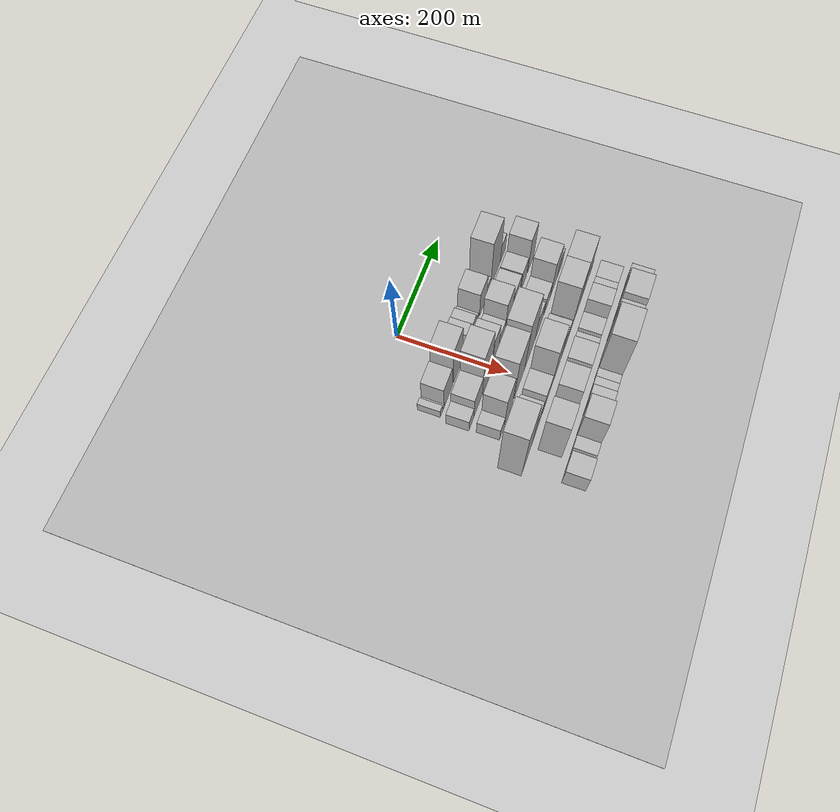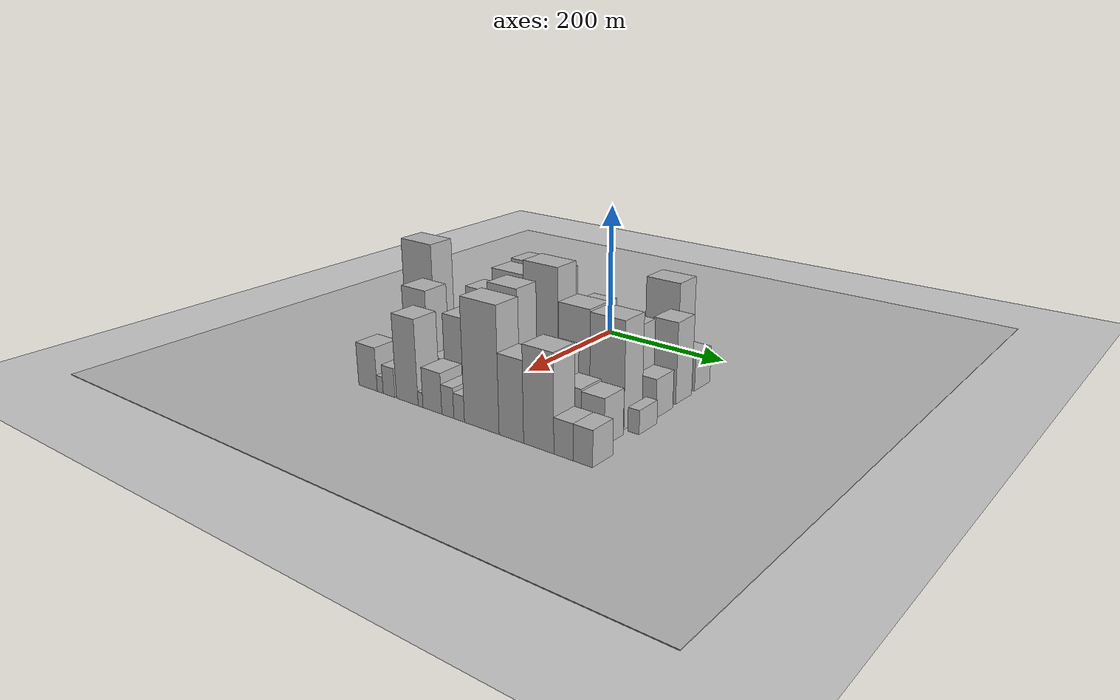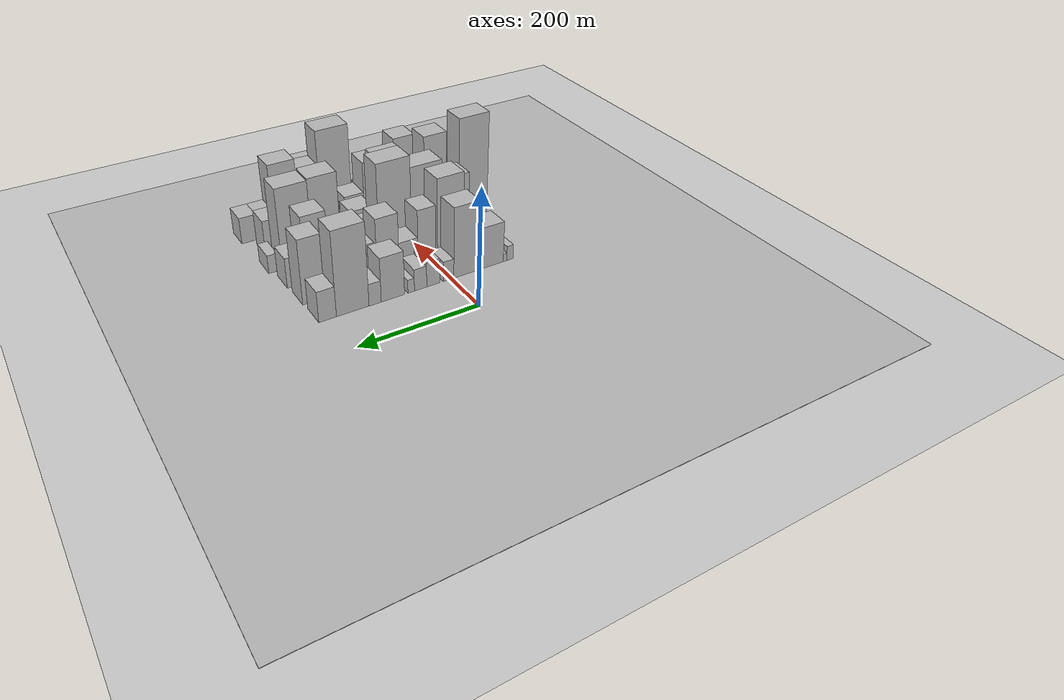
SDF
<sdf version="1.6">
 <world name="default">
  <include><name>ground_plane_1</name><uri>model://HANNAS_ground_plane</uri></include>
  <include>
   <name>ground_plane_2</name>
   <uri>model://HANNAS_ground_plane</uri>
   <pose>100 0 0  0 0 0</pose>
  </include>
  <model name="building_21">
   <static>1</static>
   <pose>100.0000 -107.6171 0 0.000000 0.000000 0.000000</pose>
   <link name="link">
    <pose>0 0 13.50 0 0 0</pose>
    <collision name="collision"><geometry><box><size>40.0000 11.9597 27.0000</size></box></geometry></collision>
    <visual name="visual">
     <cast_shadows>0</cast_shadows>
     <geometry><box><size>40.0000 11.9597 27.0000</size></box></geometry>
     <material>
      <script>
       <uri>model://HANNAS_wall/materials/scripts</uri>
       <uri>model://HANNAS_wall/materials/textures</uri>
       <name>vrc/HANNAS_wall</name>
      </script>
     </material>
    </visual>
   </link>
  </model>
  <model name="building_22">
   <static>1</static>
   <pose>100.0000 -98.2412 0 0.000000 0.000000 0.000000</pose>
   <link name="link">
    <pose>0 0 7.50 0 0 0</pose>
    <collision name="collision"><geometry><box><size>40.0000 6.7922 15.0000</size></box></geometry></collision>
    <visual name="visual">
     <cast_shadows>0</cast_shadows>
     <geometry><box><size>40.0000 6.7922 15.0000</size></box></geometry>
     <material>
      <script>
       <uri>model://HANNAS_wall/materials/scripts</uri>
       <uri>model://HANNAS_wall/materials/textures</uri>
       <name>vrc/HANNAS_wall</name>
      </script>
     </material>
    </visual>
   </link>
  </model>
  <model name="building_23">
   <static>1</static>
   <pose>100.0000 -74.6883 0 0.000000 0.000000 0.000000</pose>
   <link name="link">
    <pose>0 0 37.50 0 0 0</pose>
    <collision name="collision"><geometry><box><size>40.0000 40.3135 75.0000</size></box></geometry></collision>
    <visual name="visual">
     <cast_shadows>0</cast_shadows>
     <geometry><box><size>40.0000 40.3135 75.0000</size></box></geometry>
     <material>
      <script>
       <uri>model://HANNAS_wall/materials/scripts</uri>
       <uri>model://HANNAS_wall/materials/textures</uri>
       <name>vrc/HANNAS_wall</name>
      </script>
     </material>
    </visual>
   </link>
  </model>
  <model name="building_24">
   <static>1</static>
   <pose>100.0000 -26.6309 0 0.000000 0.000000 0.000000</pose>
   <link name="link">
    <pose>0 0 63.00 0 0 0</pose>
    <collision name="collision"><geometry><box><size>40.0000 45.8013 126.0000</size></box></geometry></collision>
    <visual name="visual">
     <cast_shadows>0</cast_shadows>
     <geometry><box><size>40.0000 45.8013 126.0000</size></box></geometry>
     <material>
      <script>
       <uri>model://HANNAS_wall/materials/scripts</uri>
       <uri>model://HANNAS_wall/materials/textures</uri>
       <name>vrc/HANNAS_wall</name>
      </script>
     </material>
    </visual>
   </link>
  </model>
  <model name="building_25">
   <static>1</static>
   <pose>100.0000 5.6907 0 0.000000 0.000000 0.000000</pose>
   <link name="link">
    <pose>0 0 18.00 0 0 0</pose>
    <collision name="collision"><geometry><box><size>40.0000 18.8419 36.0000</size></box></geometry></collision>
    <visual name="visual">
     <cast_shadows>0</cast_shadows>
     <geometry><box><size>40.0000 18.8419 36.0000</size></box></geometry>
     <material>
      <script>
       <uri>model://HANNAS_wall/materials/scripts</uri>
       <uri>model://HANNAS_wall/materials/textures</uri>
       <name>vrc/HANNAS_wall</name>
      </script>
     </material>
    </visual>
   </link>
  </model>
  <model name="building_26">
   <static>1</static>
   <pose>100.0000 32.7664 0 0.000000 0.000000 0.000000</pose>
   <link name="link">
    <pose>0 0 22.50 0 0 0</pose>
    <collision name="collision"><geometry><box><size>40.0000 23.3094 45.0000</size></box></geometry></collision>
    <visual name="visual">
     <cast_shadows>0</cast_shadows>
     <geometry><box><size>40.0000 23.3094 45.0000</size></box></geometry>
     <material>
      <script>
       <uri>model://HANNAS_wall/materials/scripts</uri>
       <uri>model://HANNAS_wall/materials/textures</uri>
       <name>vrc/HANNAS_wall</name>
      </script>
     </material>
    </visual>
   </link>
  </model>
  <model name="building_27">
   <static>1</static>
   <pose>100.0000 55.0933 0 0.000000 0.000000 0.000000</pose>
   <link name="link">
    <pose>0 0 19.50 0 0 0</pose>
    <collision name="collision"><geometry><box><size>40.0000 21.3444 39.0000</size></box></geometry></collision>
    <visual name="visual">
     <cast_shadows>0</cast_shadows>
     <geometry><box><size>40.0000 21.3444 39.0000</size></box></geometry>
     <material>
      <script>
       <uri>model://HANNAS_wall/materials/scripts</uri>
       <uri>model://HANNAS_wall/materials/textures</uri>
       <name>vrc/HANNAS_wall</name>
      </script>
     </material>
    </visual>
   </link>
  </model>
  <model name="building_28">
   <static>1</static>
   <pose>100.0000 71.3840 0 0.000000 0.000000 0.000000</pose>
   <link name="link">
    <pose>0 0 12.00 0 0 0</pose>
    <collision name="collision"><geometry><box><size>40.0000 11.2370 24.0000</size></box></geometry></collision>
    <visual name="visual">
     <cast_shadows>0</cast_shadows>
     <geometry><box><size>40.0000 11.2370 24.0000</size></box></geometry>
     <material>
      <script>
       <uri>model://HANNAS_wall/materials/scripts</uri>
       <uri>model://HANNAS_wall/materials/textures</uri>
       <name>vrc/HANNAS_wall</name>
      </script>
     </material>
    </visual>
   </link>
  </model>
  <model name="building_29">
   <static>1</static>
   <pose>100.0000 102.6483 0 0.000000 0.000000 0.000000</pose>
   <link name="link">
    <pose>0 0 39.00 0 0 0</pose>
    <collision name="collision"><geometry><box><size>40.0000 39.2917 78.0000</size></box></geometry></collision>
    <visual name="visual">
     <cast_shadows>0</cast_shadows>
     <geometry><box><size>40.0000 39.2917 78.0000</size></box></geometry>
     <material>
      <script>
       <uri>model://HANNAS_wall/materials/scripts</uri>
       <uri>model://HANNAS_wall/materials/textures</uri>
       <name>vrc/HANNAS_wall</name>
      </script>
     </material>
    </visual>
   </link>
  </model>
  <model name="building_30">
   <static>1</static>
   <pose>100.0000 132.4842 0 0.000000 0.000000 0.000000</pose>
   <link name="link">
    <pose>0 0 19.50 0 0 0</pose>
    <collision name="collision"><geometry><box><size>40.0000 20.3801 39.0000</size></box></geometry></collision>
    <visual name="visual">
     <cast_shadows>0</cast_shadows>
     <geometry><box><size>40.0000 20.3801 39.0000</size></box></geometry>
     <material>
      <script>
       <uri>model://HANNAS_wall/materials/scripts</uri>
       <uri>model://HANNAS_wall/materials/textures</uri>
       <name>vrc/HANNAS_wall</name>
      </script>
     </material>
    </visual>
   </link>
  </model>
  <model name="building_31">
   <static>1</static>
   <pose>100.0000 169.2116 0 0.000000 0.000000 0.000000</pose>
   <link name="link">
    <pose>0 0 73.50 0 0 0</pose>
    <collision name="collision"><geometry><box><size>40.0000 53.0747 147.0000</size></box></geometry></collision>
    <visual name="visual">
     <cast_shadows>0</cast_shadows>
     <geometry><box><size>40.0000 53.0747 147.0000</size></box></geometry>
     <material>
      <script>
       <uri>model://HANNAS_wall/materials/scripts</uri>
       <uri>model://HANNAS_wall/materials/textures</uri>
       <name>vrc/HANNAS_wall</name>
      </script>
     </material>
    </visual>
   </link>
  </model>
  <model name="building_32">
   <static>1</static>
   <pose>100.0000 209.7995 0 0.000000 0.000000 0.000000</pose>
   <link name="link">
    <pose>0 0 27.00 0 0 0</pose>
    <collision name="collision"><geometry><box><size>40.0000 28.1011 54.0000</size></box></geometry></collision>
    <visual name="visual">
     <cast_shadows>0</cast_shadows>
     <geometry><box><size>40.0000 28.1011 54.0000</size></box></geometry>
     <material>
      <script>
       <uri>model://HANNAS_wall/materials/scripts</uri>
       <uri>model://HANNAS_wall/materials/textures</uri>
       <name>vrc/HANNAS_wall</name>
      </script>
     </material>
    </visual>
   </link>
  </model>
  <model name="building_72">
   <static>1</static>
   <pose>152.0000 -107.4834 0 0.000000 0.000000 0.000000</pose>
   <link name="link">
    <pose>0 0 21.00 0 0 0</pose>
    <collision name="collision"><geometry><box><size>40.0000 24.8672 42.0000</size></box></geometry></collision>
    <visual name="visual">
     <cast_shadows>0</cast_shadows>
     <geometry><box><size>40.0000 24.8672 42.0000</size></box></geometry>
     <material>
      <script>
       <uri>model://HANNAS_wall/materials/scripts</uri>
       <uri>model://HANNAS_wall/materials/textures</uri>
       <name>vrc/HANNAS_wall</name>
      </script>
     </material>
    </visual>
   </link>
  </model>
  <model name="building_73">
   <static>1</static>
   <pose>152.0000 -73.6329 0 0.000000 0.000000 0.000000</pose>
   <link name="link">
    <pose>0 0 37.50 0 0 0</pose>
    <collision name="collision"><geometry><box><size>40.0000 42.8338 75.0000</size></box></geometry></collision>
    <visual name="visual">
     <cast_shadows>0</cast_shadows>
     <geometry><box><size>40.0000 42.8338 75.0000</size></box></geometry>
     <material>
      <script>
       <uri>model://HANNAS_wall/materials/scripts</uri>
       <uri>model://HANNAS_wall/materials/textures</uri>
       <name>vrc/HANNAS_wall</name>
      </script>
     </material>
    </visual>
   </link>
  </model>
  <model name="building_74">
   <static>1</static>
   <pose>152.0000 -28.2599 0 0.000000 0.000000 0.000000</pose>
   <link name="link">
    <pose>0 0 75.00 0 0 0</pose>
    <collision name="collision"><geometry><box><size>40.0000 47.9121 150.0000</size></box></geometry></collision>
    <visual name="visual">
     <cast_shadows>0</cast_shadows>
     <geometry><box><size>40.0000 47.9121 150.0000</size></box></geometry>
     <material>
      <script>
       <uri>model://HANNAS_wall/materials/scripts</uri>
       <uri>model://HANNAS_wall/materials/textures</uri>
       <name>vrc/HANNAS_wall</name>
      </script>
     </material>
    </visual>
   </link>
  </model>
  <model name="building_75">
   <static>1</static>
   <pose>152.0000 14.6540 0 0.000000 0.000000 0.000000</pose>
   <link name="link">
    <pose>0 0 52.50 0 0 0</pose>
    <collision name="collision"><geometry><box><size>40.0000 31.9158 105.0000</size></box></geometry></collision>
    <visual name="visual">
     <cast_shadows>0</cast_shadows>
     <geometry><box><size>40.0000 31.9158 105.0000</size></box></geometry>
     <material>
      <script>
       <uri>model://HANNAS_wall/materials/scripts</uri>
       <uri>model://HANNAS_wall/materials/textures</uri>
       <name>vrc/HANNAS_wall</name>
      </script>
     </material>
    </visual>
   </link>
  </model>
  <model name="building_76">
   <static>1</static>
   <pose>152.0000 47.3638 0 0.000000 0.000000 0.000000</pose>
   <link name="link">
    <pose>0 0 28.50 0 0 0</pose>
    <collision name="collision"><geometry><box><size>40.0000 33.5037 57.0000</size></box></geometry></collision>
    <visual name="visual">
     <cast_shadows>0</cast_shadows>
     <geometry><box><size>40.0000 33.5037 57.0000</size></box></geometry>
     <material>
      <script>
       <uri>model://HANNAS_wall/materials/scripts</uri>
       <uri>model://HANNAS_wall/materials/textures</uri>
       <name>vrc/HANNAS_wall</name>
      </script>
     </material>
    </visual>
   </link>
  </model>
  <model name="building_77">
   <static>1</static>
   <pose>152.0000 83.1974 0 0.000000 0.000000 0.000000</pose>
   <link name="link">
    <pose>0 0 55.50 0 0 0</pose>
    <collision name="collision"><geometry><box><size>40.0000 38.1635 111.0000</size></box></geometry></collision>
    <visual name="visual">
     <cast_shadows>0</cast_shadows>
     <geometry><box><size>40.0000 38.1635 111.0000</size></box></geometry>
     <material>
      <script>
       <uri>model://HANNAS_wall/materials/scripts</uri>
       <uri>model://HANNAS_wall/materials/textures</uri>
       <name>vrc/HANNAS_wall</name>
      </script>
     </material>
    </visual>
   </link>
  </model>
  <model name="building_78">
   <static>1</static>
   <pose>152.0000 125.6947 0 0.000000 0.000000 0.000000</pose>
   <link name="link">
    <pose>0 0 36.00 0 0 0</pose>
    <collision name="collision"><geometry><box><size>40.0000 40.8310 72.0000</size></box></geometry></collision>
    <visual name="visual">
     <cast_shadows>0</cast_shadows>
     <geometry><box><size>40.0000 40.8310 72.0000</size></box></geometry>
     <material>
      <script>
       <uri>model://HANNAS_wall/materials/scripts</uri>
       <uri>model://HANNAS_wall/materials/textures</uri>
       <name>vrc/HANNAS_wall</name>
      </script>
     </material>
    </visual>
   </link>
  </model>
  <model name="building_79">
   <static>1</static>
   <pose>152.0000 167.7199 0 0.000000 0.000000 0.000000</pose>
   <link name="link">
    <pose>0 0 33.00 0 0 0</pose>
    <collision name="collision"><geometry><box><size>40.0000 33.2195 66.0000</size></box></geometry></collision>
    <visual name="visual">
     <cast_shadows>0</cast_shadows>
     <geometry><box><size>40.0000 33.2195 66.0000</size></box></geometry>
     <material>
      <script>
       <uri>model://HANNAS_wall/materials/scripts</uri>
       <uri>model://HANNAS_wall/materials/textures</uri>
       <name>vrc/HANNAS_wall</name>
      </script>
     </material>
    </visual>
   </link>
  </model>
  <model name="building_80">
   <static>1</static>
   <pose>152.0000 208.0052 0 0.000000 0.000000 0.000000</pose>
   <link name="link">
    <pose>0 0 57.00 0 0 0</pose>
    <collision name="collision"><geometry><box><size>40.0000 37.3511 114.0000</size></box></geometry></collision>
    <visual name="visual">
     <cast_shadows>0</cast_shadows>
     <geometry><box><size>40.0000 37.3511 114.0000</size></box></geometry>
     <material>
      <script>
       <uri>model://HANNAS_wall/materials/scripts</uri>
       <uri>model://HANNAS_wall/materials/textures</uri>
       <name>vrc/HANNAS_wall</name>
      </script>
     </material>
    </visual>
   </link>
  </model>
  <model name="building_125">
   <static>1</static>
   <pose>204.0000 -105.6509 0 0.000000 0.000000 0.000000</pose>
   <link name="link">
    <pose>0 0 22.50 0 0 0</pose>
    <collision name="collision"><geometry><box><size>40.0000 23.9299 45.0000</size></box></geometry></collision>
    <visual name="visual">
     <cast_shadows>0</cast_shadows>
     <geometry><box><size>40.0000 23.9299 45.0000</size></box></geometry>
     <material>
      <script>
       <uri>model://HANNAS_wall/materials/scripts</uri>
       <uri>model://HANNAS_wall/materials/textures</uri>
       <name>vrc/HANNAS_wall</name>
      </script>
     </material>
    </visual>
   </link>
  </model>
  <model name="building_126">
   <static>1</static>
   <pose>204.0000 -72.5963 0 0.000000 0.000000 0.000000</pose>
   <link name="link">
    <pose>0 0 57.00 0 0 0</pose>
    <collision name="collision"><geometry><box><size>40.0000 42.1792 114.0000</size></box></geometry></collision>
    <visual name="visual">
     <cast_shadows>0</cast_shadows>
     <geometry><box><size>40.0000 42.1792 114.0000</size></box></geometry>
     <material>
      <script>
       <uri>model://HANNAS_wall/materials/scripts</uri>
       <uri>model://HANNAS_wall/materials/textures</uri>
       <name>vrc/HANNAS_wall</name>
      </script>
     </material>
    </visual>
   </link>
  </model>
  <model name="building_127">
   <static>1</static>
   <pose>204.0000 -14.3575 0 0.000000 0.000000 0.000000</pose>
   <link name="link">
    <pose>0 0 75.00 0 0 0</pose>
    <collision name="collision"><geometry><box><size>40.0000 56.2984 150.0000</size></box></geometry></collision>
    <visual name="visual">
     <cast_shadows>0</cast_shadows>
     <geometry><box><size>40.0000 56.2984 150.0000</size></box></geometry>
     <material>
      <script>
       <uri>model://HANNAS_wall/materials/scripts</uri>
       <uri>model://HANNAS_wall/materials/textures</uri>
       <name>vrc/HANNAS_wall</name>
      </script>
     </material>
    </visual>
   </link>
  </model>
  <model name="building_128">
   <static>1</static>
   <pose>204.0000 42.9055 0 0.000000 0.000000 0.000000</pose>
   <link name="link">
    <pose>0 0 85.50 0 0 0</pose>
    <collision name="collision"><geometry><box><size>40.0000 58.2277 171.0000</size></box></geometry></collision>
    <visual name="visual">
     <cast_shadows>0</cast_shadows>
     <geometry><box><size>40.0000 58.2277 171.0000</size></box></geometry>
     <material>
      <script>
       <uri>model://HANNAS_wall/materials/scripts</uri>
       <uri>model://HANNAS_wall/materials/textures</uri>
       <name>vrc/HANNAS_wall</name>
      </script>
     </material>
    </visual>
   </link>
  </model>
  <model name="building_129">
   <static>1</static>
   <pose>204.0000 92.3567 0 0.000000 0.000000 0.000000</pose>
   <link name="link">
    <pose>0 0 34.50 0 0 0</pose>
    <collision name="collision"><geometry><box><size>40.0000 40.6747 69.0000</size></box></geometry></collision>
    <visual name="visual">
     <cast_shadows>0</cast_shadows>
     <geometry><box><size>40.0000 40.6747 69.0000</size></box></geometry>
     <material>
      <script>
       <uri>model://HANNAS_wall/materials/scripts</uri>
       <uri>model://HANNAS_wall/materials/textures</uri>
       <name>vrc/HANNAS_wall</name>
      </script>
     </material>
    </visual>
   </link>
  </model>
  <model name="building_130">
   <static>1</static>
   <pose>204.0000 138.6356 0 0.000000 0.000000 0.000000</pose>
   <link name="link">
    <pose>0 0 30.00 0 0 0</pose>
    <collision name="collision"><geometry><box><size>40.0000 33.8832 60.0000</size></box></geometry></collision>
    <visual name="visual">
     <cast_shadows>0</cast_shadows>
     <geometry><box><size>40.0000 33.8832 60.0000</size></box></geometry>
     <material>
      <script>
       <uri>model://HANNAS_wall/materials/scripts</uri>
       <uri>model://HANNAS_wall/materials/textures</uri>
       <name>vrc/HANNAS_wall</name>
      </script>
     </material>
    </visual>
   </link>
  </model>
  <model name="building_131">
   <static>1</static>
   <pose>204.0000 178.9792 0 0.000000 0.000000 0.000000</pose>
   <link name="link">
    <pose>0 0 58.50 0 0 0</pose>
    <collision name="collision"><geometry><box><size>40.0000 40.8040 117.0000</size></box></geometry></collision>
    <visual name="visual">
     <cast_shadows>0</cast_shadows>
     <geometry><box><size>40.0000 40.8040 117.0000</size></box></geometry>
     <material>
      <script>
       <uri>model://HANNAS_wall/materials/scripts</uri>
       <uri>model://HANNAS_wall/materials/textures</uri>
       <name>vrc/HANNAS_wall</name>
      </script>
     </material>
    </visual>
   </link>
  </model>
  <model name="building_132">
   <static>1</static>
   <pose>204.0000 214.5938 0 0.000000 0.000000 0.000000</pose>
   <link name="link">
    <pose>0 0 27.00 0 0 0</pose>
    <collision name="collision"><geometry><box><size>40.0000 30.4252 54.0000</size></box></geometry></collision>
    <visual name="visual">
     <cast_shadows>0</cast_shadows>
     <geometry><box><size>40.0000 30.4252 54.0000</size></box></geometry>
     <material>
      <script>
       <uri>model://HANNAS_wall/materials/scripts</uri>
       <uri>model://HANNAS_wall/materials/textures</uri>
       <name>vrc/HANNAS_wall</name>
      </script>
     </material>
    </visual>
   </link>
  </model>
  <model name="building_175">
   <static>1</static>
   <pose>256.0000 -134.2657 0 0.000000 0.000000 0.000000</pose>
   <link name="link">
    <pose>0 0 91.50 0 0 0</pose>
    <collision name="collision"><geometry><box><size>40.0000 56.9109 183.0000</size></box></geometry></collision>
    <visual name="visual">
     <cast_shadows>0</cast_shadows>
     <geometry><box><size>40.0000 56.9109 183.0000</size></box></geometry>
     <material>
      <script>
       <uri>model://HANNAS_wall/materials/scripts</uri>
       <uri>model://HANNAS_wall/materials/textures</uri>
       <name>vrc/HANNAS_wall</name>
      </script>
     </material>
    </visual>
   </link>
  </model>
  <model name="building_176">
   <static>1</static>
   <pose>256.0000 -83.0237 0 0.000000 0.000000 0.000000</pose>
   <link name="link">
    <pose>0 0 40.50 0 0 0</pose>
    <collision name="collision"><geometry><box><size>40.0000 45.5732 81.0000</size></box></geometry></collision>
    <visual name="visual">
     <cast_shadows>0</cast_shadows>
     <geometry><box><size>40.0000 45.5732 81.0000</size></box></geometry>
     <material>
      <script>
       <uri>model://HANNAS_wall/materials/scripts</uri>
       <uri>model://HANNAS_wall/materials/textures</uri>
       <name>vrc/HANNAS_wall</name>
      </script>
     </material>
    </visual>
   </link>
  </model>
  <model name="building_177">
   <static>1</static>
   <pose>256.0000 -53.6020 0 0.000000 0.000000 0.000000</pose>
   <link name="link">
    <pose>0 0 13.50 0 0 0</pose>
    <collision name="collision"><geometry><box><size>40.0000 13.2701 27.0000</size></box></geometry></collision>
    <visual name="visual">
     <cast_shadows>0</cast_shadows>
     <geometry><box><size>40.0000 13.2701 27.0000</size></box></geometry>
     <material>
      <script>
       <uri>model://HANNAS_wall/materials/scripts</uri>
       <uri>model://HANNAS_wall/materials/textures</uri>
       <name>vrc/HANNAS_wall</name>
      </script>
     </material>
    </visual>
   </link>
  </model>
  <model name="building_178">
   <static>1</static>
   <pose>256.0000 -28.3458 0 0.000000 0.000000 0.000000</pose>
   <link name="link">
    <pose>0 0 36.00 0 0 0</pose>
    <collision name="collision"><geometry><box><size>40.0000 37.2424 72.0000</size></box></geometry></collision>
    <visual name="visual">
     <cast_shadows>0</cast_shadows>
     <geometry><box><size>40.0000 37.2424 72.0000</size></box></geometry>
     <material>
      <script>
       <uri>model://HANNAS_wall/materials/scripts</uri>
       <uri>model://HANNAS_wall/materials/textures</uri>
       <name>vrc/HANNAS_wall</name>
      </script>
     </material>
    </visual>
   </link>
  </model>
  <model name="building_179">
   <static>1</static>
   <pose>256.0000 20.2954 0 0.000000 0.000000 0.000000</pose>
   <link name="link">
    <pose>0 0 75.00 0 0 0</pose>
    <collision name="collision"><geometry><box><size>40.0000 50.0400 150.0000</size></box></geometry></collision>
    <visual name="visual">
     <cast_shadows>0</cast_shadows>
     <geometry><box><size>40.0000 50.0400 150.0000</size></box></geometry>
     <material>
      <script>
       <uri>model://HANNAS_wall/materials/scripts</uri>
       <uri>model://HANNAS_wall/materials/textures</uri>
       <name>vrc/HANNAS_wall</name>
      </script>
     </material>
    </visual>
   </link>
  </model>
  <model name="building_180">
   <static>1</static>
   <pose>256.0000 75.3618 0 0.000000 0.000000 0.000000</pose>
   <link name="link">
    <pose>0 0 34.50 0 0 0</pose>
    <collision name="collision"><geometry><box><size>40.0000 40.0928 69.0000</size></box></geometry></collision>
    <visual name="visual">
     <cast_shadows>0</cast_shadows>
     <geometry><box><size>40.0000 40.0928 69.0000</size></box></geometry>
     <material>
      <script>
       <uri>model://HANNAS_wall/materials/scripts</uri>
       <uri>model://HANNAS_wall/materials/textures</uri>
       <name>vrc/HANNAS_wall</name>
      </script>
     </material>
    </visual>
   </link>
  </model>
  <model name="building_181">
   <static>1</static>
   <pose>256.0000 104.8814 0 0.000000 0.000000 0.000000</pose>
   <link name="link">
    <pose>0 0 16.50 0 0 0</pose>
    <collision name="collision"><geometry><box><size>40.0000 18.9463 33.0000</size></box></geometry></collision>
    <visual name="visual">
     <cast_shadows>0</cast_shadows>
     <geometry><box><size>40.0000 18.9463 33.0000</size></box></geometry>
     <material>
      <script>
       <uri>model://HANNAS_wall/materials/scripts</uri>
       <uri>model://HANNAS_wall/materials/textures</uri>
       <name>vrc/HANNAS_wall</name>
      </script>
     </material>
    </visual>
   </link>
  </model>
  <model name="building_182">
   <static>1</static>
   <pose>256.0000 138.9964 0 0.000000 0.000000 0.000000</pose>
   <link name="link">
    <pose>0 0 73.50 0 0 0</pose>
    <collision name="collision"><geometry><box><size>40.0000 49.2837 147.0000</size></box></geometry></collision>
    <visual name="visual">
     <cast_shadows>0</cast_shadows>
     <geometry><box><size>40.0000 49.2837 147.0000</size></box></geometry>
     <material>
      <script>
       <uri>model://HANNAS_wall/materials/scripts</uri>
       <uri>model://HANNAS_wall/materials/textures</uri>
       <name>vrc/HANNAS_wall</name>
      </script>
     </material>
    </visual>
   </link>
  </model>
  <model name="building_183">
   <static>1</static>
   <pose>256.0000 190.0855 0 0.000000 0.000000 0.000000</pose>
   <link name="link">
    <pose>0 0 72.00 0 0 0</pose>
    <collision name="collision"><geometry><box><size>40.0000 52.8946 144.0000</size></box></geometry></collision>
    <visual name="visual">
     <cast_shadows>0</cast_shadows>
     <geometry><box><size>40.0000 52.8946 144.0000</size></box></geometry>
     <material>
      <script>
       <uri>model://HANNAS_wall/materials/scripts</uri>
       <uri>model://HANNAS_wall/materials/textures</uri>
       <name>vrc/HANNAS_wall</name>
      </script>
     </material>
    </visual>
   </link>
  </model>
  <model name="building_184">
   <static>1</static>
   <pose>256.0000 230.9423 0 0.000000 0.000000 0.000000</pose>
   <link name="link">
    <pose>0 0 16.50 0 0 0</pose>
    <collision name="collision"><geometry><box><size>40.0000 16.8190 33.0000</size></box></geometry></collision>
    <visual name="visual">
     <cast_shadows>0</cast_shadows>
     <geometry><box><size>40.0000 16.8190 33.0000</size></box></geometry>
     <material>
      <script>
       <uri>model://HANNAS_wall/materials/scripts</uri>
       <uri>model://HANNAS_wall/materials/textures</uri>
       <name>vrc/HANNAS_wall</name>
      </script>
     </material>
    </visual>
   </link>
  </model>
  <model name="building_226">
   <static>1</static>
   <pose>308.0000 -89.8308 0 0.000000 0.000000 0.000000</pose>
   <link name="link">
    <pose>0 0 69.00 0 0 0</pose>
    <collision name="collision"><geometry><box><size>40.0000 43.4710 138.0000</size></box></geometry></collision>
    <visual name="visual">
     <cast_shadows>0</cast_shadows>
     <geometry><box><size>40.0000 43.4710 138.0000</size></box></geometry>
     <material>
      <script>
       <uri>model://HANNAS_wall/materials/scripts</uri>
       <uri>model://HANNAS_wall/materials/textures</uri>
       <name>vrc/HANNAS_wall</name>
      </script>
     </material>
    </visual>
   </link>
  </model>
  <model name="building_227">
   <static>1</static>
   <pose>308.0000 -51.4904 0 0.000000 0.000000 0.000000</pose>
   <link name="link">
    <pose>0 0 24.00 0 0 0</pose>
    <collision name="collision"><geometry><box><size>40.0000 27.2099 48.0000</size></box></geometry></collision>
    <visual name="visual">
     <cast_shadows>0</cast_shadows>
     <geometry><box><size>40.0000 27.2099 48.0000</size></box></geometry>
     <material>
      <script>
       <uri>model://HANNAS_wall/materials/scripts</uri>
       <uri>model://HANNAS_wall/materials/textures</uri>
       <name>vrc/HANNAS_wall</name>
      </script>
     </material>
    </visual>
   </link>
  </model>
  <model name="building_228">
   <static>1</static>
   <pose>308.0000 -16.8986 0 0.000000 0.000000 0.000000</pose>
   <link name="link">
    <pose>0 0 57.00 0 0 0</pose>
    <collision name="collision"><geometry><box><size>40.0000 41.9737 114.0000</size></box></geometry></collision>
    <visual name="visual">
     <cast_shadows>0</cast_shadows>
     <geometry><box><size>40.0000 41.9737 114.0000</size></box></geometry>
     <material>
      <script>
       <uri>model://HANNAS_wall/materials/scripts</uri>
       <uri>model://HANNAS_wall/materials/textures</uri>
       <name>vrc/HANNAS_wall</name>
      </script>
     </material>
    </visual>
   </link>
  </model>
  <model name="building_229">
   <static>1</static>
   <pose>308.0000 26.6593 0 0.000000 0.000000 0.000000</pose>
   <link name="link">
    <pose>0 0 60.00 0 0 0</pose>
    <collision name="collision"><geometry><box><size>40.0000 39.1421 120.0000</size></box></geometry></collision>
    <visual name="visual">
     <cast_shadows>0</cast_shadows>
     <geometry><box><size>40.0000 39.1421 120.0000</size></box></geometry>
     <material>
      <script>
       <uri>model://HANNAS_wall/materials/scripts</uri>
       <uri>model://HANNAS_wall/materials/textures</uri>
       <name>vrc/HANNAS_wall</name>
      </script>
     </material>
    </visual>
   </link>
  </model>
  <model name="building_230">
   <static>1</static>
   <pose>308.0000 64.0724 0 0.000000 0.000000 0.000000</pose>
   <link name="link">
    <pose>0 0 33.00 0 0 0</pose>
    <collision name="collision"><geometry><box><size>40.0000 35.6841 66.0000</size></box></geometry></collision>
    <visual name="visual">
     <cast_shadows>0</cast_shadows>
     <geometry><box><size>40.0000 35.6841 66.0000</size></box></geometry>
     <material>
      <script>
       <uri>model://HANNAS_wall/materials/scripts</uri>
       <uri>model://HANNAS_wall/materials/textures</uri>
       <name>vrc/HANNAS_wall</name>
      </script>
     </material>
    </visual>
   </link>
  </model>
  <model name="building_231">
   <static>1</static>
   <pose>308.0000 106.7965 0 0.000000 0.000000 0.000000</pose>
   <link name="link">
    <pose>0 0 30.00 0 0 0</pose>
    <collision name="collision"><geometry><box><size>40.0000 31.7642 60.0000</size></box></geometry></collision>
    <visual name="visual">
     <cast_shadows>0</cast_shadows>
     <geometry><box><size>40.0000 31.7642 60.0000</size></box></geometry>
     <material>
      <script>
       <uri>model://HANNAS_wall/materials/scripts</uri>
       <uri>model://HANNAS_wall/materials/textures</uri>
       <name>vrc/HANNAS_wall</name>
      </script>
     </material>
    </visual>
   </link>
  </model>
  <model name="building_232">
   <static>1</static>
   <pose>308.0000 139.0412 0 0.000000 0.000000 0.000000</pose>
   <link name="link">
    <pose>0 0 52.50 0 0 0</pose>
    <collision name="collision"><geometry><box><size>40.0000 32.7251 105.0000</size></box></geometry></collision>
    <visual name="visual">
     <cast_shadows>0</cast_shadows>
     <geometry><box><size>40.0000 32.7251 105.0000</size></box></geometry>
     <material>
      <script>
       <uri>model://HANNAS_wall/materials/scripts</uri>
       <uri>model://HANNAS_wall/materials/textures</uri>
       <name>vrc/HANNAS_wall</name>
      </script>
     </material>
    </visual>
   </link>
  </model>
  <model name="building_233">
   <static>1</static>
   <pose>308.0000 172.4441 0 0.000000 0.000000 0.000000</pose>
   <link name="link">
    <pose>0 0 33.00 0 0 0</pose>
    <collision name="collision"><geometry><box><size>40.0000 34.0806 66.0000</size></box></geometry></collision>
    <visual name="visual">
     <cast_shadows>0</cast_shadows>
     <geometry><box><size>40.0000 34.0806 66.0000</size></box></geometry>
     <material>
      <script>
       <uri>model://HANNAS_wall/materials/scripts</uri>
       <uri>model://HANNAS_wall/materials/textures</uri>
       <name>vrc/HANNAS_wall</name>
      </script>
     </material>
    </visual>
   </link>
  </model>
  <model name="building_234">
   <static>1</static>
   <pose>308.0000 206.8047 0 0.000000 0.000000 0.000000</pose>
   <link name="link">
    <pose>0 0 31.50 0 0 0</pose>
    <collision name="collision"><geometry><box><size>40.0000 34.6407 63.0000</size></box></geometry></collision>
    <visual name="visual">
     <cast_shadows>0</cast_shadows>
     <geometry><box><size>40.0000 34.6407 63.0000</size></box></geometry>
     <material>
      <script>
       <uri>model://HANNAS_wall/materials/scripts</uri>
       <uri>model://HANNAS_wall/materials/textures</uri>
       <name>vrc/HANNAS_wall</name>
      </script>
     </material>
    </visual>
   </link>
  </model>
  <model name="building_275">
   <static>1</static>
   <pose>360.0000 -133.3040 0 0.000000 0.000000 0.000000</pose>
   <link name="link">
    <pose>0 0 31.50 0 0 0</pose>
    <collision name="collision"><geometry><box><size>40.0000 36.6645 63.0000</size></box></geometry></collision>
    <visual name="visual">
     <cast_shadows>0</cast_shadows>
     <geometry><box><size>40.0000 36.6645 63.0000</size></box></geometry>
     <material>
      <script>
       <uri>model://HANNAS_wall/materials/scripts</uri>
       <uri>model://HANNAS_wall/materials/textures</uri>
       <name>vrc/HANNAS_wall</name>
      </script>
     </material>
    </visual>
   </link>
  </model>
  <model name="building_276">
   <static>1</static>
   <pose>360.0000 -109.2335 0 0.000000 0.000000 0.000000</pose>
   <link name="link">
    <pose>0 0 12.00 0 0 0</pose>
    <collision name="collision"><geometry><box><size>40.0000 11.4764 24.0000</size></box></geometry></collision>
    <visual name="visual">
     <cast_shadows>0</cast_shadows>
     <geometry><box><size>40.0000 11.4764 24.0000</size></box></geometry>
     <material>
      <script>
       <uri>model://HANNAS_wall/materials/scripts</uri>
       <uri>model://HANNAS_wall/materials/textures</uri>
       <name>vrc/HANNAS_wall</name>
      </script>
     </material>
    </visual>
   </link>
  </model>
  <model name="building_277">
   <static>1</static>
   <pose>360.0000 -92.2027 0 0.000000 0.000000 0.000000</pose>
   <link name="link">
    <pose>0 0 21.00 0 0 0</pose>
    <collision name="collision"><geometry><box><size>40.0000 22.5852 42.0000</size></box></geometry></collision>
    <visual name="visual">
     <cast_shadows>0</cast_shadows>
     <geometry><box><size>40.0000 22.5852 42.0000</size></box></geometry>
     <material>
      <script>
       <uri>model://HANNAS_wall/materials/scripts</uri>
       <uri>model://HANNAS_wall/materials/textures</uri>
       <name>vrc/HANNAS_wall</name>
      </script>
     </material>
    </visual>
   </link>
  </model>
  <model name="building_278">
   <static>1</static>
   <pose>360.0000 -57.6249 0 0.000000 0.000000 0.000000</pose>
   <link name="link">
    <pose>0 0 60.00 0 0 0</pose>
    <collision name="collision"><geometry><box><size>40.0000 40.5705 120.0000</size></box></geometry></collision>
    <visual name="visual">
     <cast_shadows>0</cast_shadows>
     <geometry><box><size>40.0000 40.5705 120.0000</size></box></geometry>
     <material>
      <script>
       <uri>model://HANNAS_wall/materials/scripts</uri>
       <uri>model://HANNAS_wall/materials/textures</uri>
       <name>vrc/HANNAS_wall</name>
      </script>
     </material>
    </visual>
   </link>
  </model>
  <model name="building_279">
   <static>1</static>
   <pose>360.0000 -32.9518 0 0.000000 0.000000 0.000000</pose>
   <link name="link">
    <pose>0 0 10.50 0 0 0</pose>
    <collision name="collision"><geometry><box><size>40.0000 8.7756 21.0000</size></box></geometry></collision>
    <visual name="visual">
     <cast_shadows>0</cast_shadows>
     <geometry><box><size>40.0000 8.7756 21.0000</size></box></geometry>
     <material>
      <script>
       <uri>model://HANNAS_wall/materials/scripts</uri>
       <uri>model://HANNAS_wall/materials/textures</uri>
       <name>vrc/HANNAS_wall</name>
      </script>
     </material>
    </visual>
   </link>
  </model>
  <model name="building_280">
   <static>1</static>
   <pose>360.0000 -11.6015 0 0.000000 0.000000 0.000000</pose>
   <link name="link">
    <pose>0 0 28.50 0 0 0</pose>
    <collision name="collision"><geometry><box><size>40.0000 33.9249 57.0000</size></box></geometry></collision>
    <visual name="visual">
     <cast_shadows>0</cast_shadows>
     <geometry><box><size>40.0000 33.9249 57.0000</size></box></geometry>
     <material>
      <script>
       <uri>model://HANNAS_wall/materials/scripts</uri>
       <uri>model://HANNAS_wall/materials/textures</uri>
       <name>vrc/HANNAS_wall</name>
      </script>
     </material>
    </visual>
   </link>
  </model>
  <model name="building_281">
   <static>1</static>
   <pose>360.0000 15.8859 0 0.000000 0.000000 0.000000</pose>
   <link name="link">
    <pose>0 0 21.00 0 0 0</pose>
    <collision name="collision"><geometry><box><size>40.0000 21.0500 42.0000</size></box></geometry></collision>
    <visual name="visual">
     <cast_shadows>0</cast_shadows>
     <geometry><box><size>40.0000 21.0500 42.0000</size></box></geometry>
     <material>
      <script>
       <uri>model://HANNAS_wall/materials/scripts</uri>
       <uri>model://HANNAS_wall/materials/textures</uri>
       <name>vrc/HANNAS_wall</name>
      </script>
     </material>
    </visual>
   </link>
  </model>
  <model name="building_282">
   <static>1</static>
   <pose>360.0000 35.6043 0 0.000000 0.000000 0.000000</pose>
   <link name="link">
    <pose>0 0 18.00 0 0 0</pose>
    <collision name="collision"><geometry><box><size>40.0000 18.3866 36.0000</size></box></geometry></collision>
    <visual name="visual">
     <cast_shadows>0</cast_shadows>
     <geometry><box><size>40.0000 18.3866 36.0000</size></box></geometry>
     <material>
      <script>
       <uri>model://HANNAS_wall/materials/scripts</uri>
       <uri>model://HANNAS_wall/materials/textures</uri>
       <name>vrc/HANNAS_wall</name>
      </script>
     </material>
    </visual>
   </link>
  </model>
  <model name="building_283">
   <static>1</static>
   <pose>360.0000 73.7368 0 0.000000 0.000000 0.000000</pose>
   <link name="link">
    <pose>0 0 84.00 0 0 0</pose>
    <collision name="collision"><geometry><box><size>40.0000 57.8784 168.0000</size></box></geometry></collision>
    <visual name="visual">
     <cast_shadows>0</cast_shadows>
     <geometry><box><size>40.0000 57.8784 168.0000</size></box></geometry>
     <material>
      <script>
       <uri>model://HANNAS_wall/materials/scripts</uri>
       <uri>model://HANNAS_wall/materials/textures</uri>
       <name>vrc/HANNAS_wall</name>
      </script>
     </material>
    </visual>
   </link>
  </model>
  <model name="building_284">
   <static>1</static>
   <pose>360.0000 122.2816 0 0.000000 0.000000 0.000000</pose>
   <link name="link">
    <pose>0 0 54.00 0 0 0</pose>
    <collision name="collision"><geometry><box><size>40.0000 39.2112 108.0000</size></box></geometry></collision>
    <visual name="visual">
     <cast_shadows>0</cast_shadows>
     <geometry><box><size>40.0000 39.2112 108.0000</size></box></geometry>
     <material>
      <script>
       <uri>model://HANNAS_wall/materials/scripts</uri>
       <uri>model://HANNAS_wall/materials/textures</uri>
       <name>vrc/HANNAS_wall</name>
      </script>
     </material>
    </visual>
   </link>
  </model>
  <model name="building_285">
   <static>1</static>
   <pose>360.0000 165.1143 0 0.000000 0.000000 0.000000</pose>
   <link name="link">
    <pose>0 0 64.50 0 0 0</pose>
    <collision name="collision"><geometry><box><size>40.0000 46.4543 129.0000</size></box></geometry></collision>
    <visual name="visual">
     <cast_shadows>0</cast_shadows>
     <geometry><box><size>40.0000 46.4543 129.0000</size></box></geometry>
     <material>
      <script>
       <uri>model://HANNAS_wall/materials/scripts</uri>
       <uri>model://HANNAS_wall/materials/textures</uri>
       <name>vrc/HANNAS_wall</name>
      </script>
     </material>
    </visual>
   </link>
  </model>
  <model name="building_286">
   <static>1</static>
   <pose>360.0000 202.5214 0 0.000000 0.000000 0.000000</pose>
   <link name="link">
    <pose>0 0 24.00 0 0 0</pose>
    <collision name="collision"><geometry><box><size>40.0000 28.3599 48.0000</size></box></geometry></collision>
    <visual name="visual">
     <cast_shadows>0</cast_shadows>
     <geometry><box><size>40.0000 28.3599 48.0000</size></box></geometry>
     <material>
      <script>
       <uri>model://HANNAS_wall/materials/scripts</uri>
       <uri>model://HANNAS_wall/materials/textures</uri>
       <name>vrc/HANNAS_wall</name>
      </script>
     </material>
    </visual>
   </link>
  </model>
  <model name="building_287">
   <static>1</static>
   <pose>360.0000 230.9682 0 0.000000 0.000000 0.000000</pose>
   <link name="link">
    <pose>0 0 24.00 0 0 0</pose>
    <collision name="collision"><geometry><box><size>40.0000 28.5337 48.0000</size></box></geometry></collision>
    <visual name="visual">
     <cast_shadows>0</cast_shadows>
     <geometry><box><size>40.0000 28.5337 48.0000</size></box></geometry>
     <material>
      <script>
       <uri>model://HANNAS_wall/materials/scripts</uri>
       <uri>model://HANNAS_wall/materials/textures</uri>
       <name>vrc/HANNAS_wall</name>
      </script>
     </material>
    </visual>
   </link>
  </model>
 </world>
</sdf>
